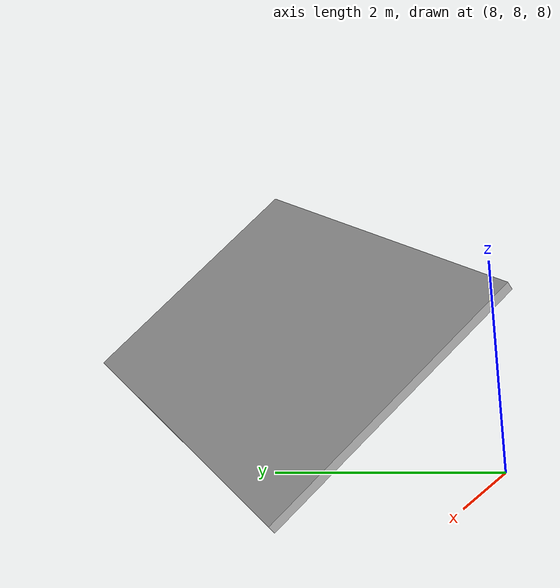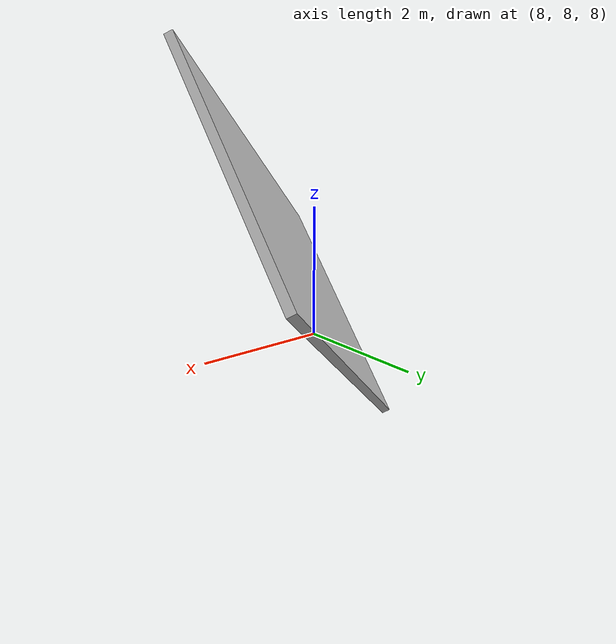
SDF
<?xml version="1.0"?>
<sdf version="1.6">
  <model name="View 1">
    <static>true</static>
    <link name="view1_link">

      <visual name="view_visual1">
        <pose>10.0 10.0 10.0 10.0 10.0 10.0</pose>
        <geometry>
          <box>
            <size>4.8 0.1 3.2</size>
          </box>

        </geometry>
	<material>
	  <pbr>
	    <metal>
	      <albedo_map>../textures/jmu_view1.jpg</albedo_map>
	    </metal>
	  </pbr>
	</material>
      </visual>

    </link>
  </model>
</sdf>
